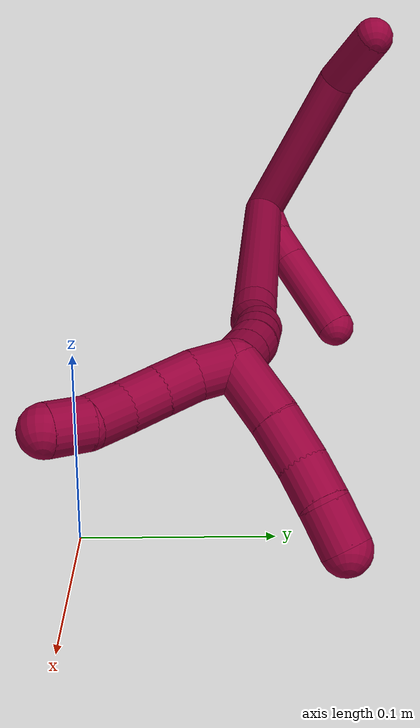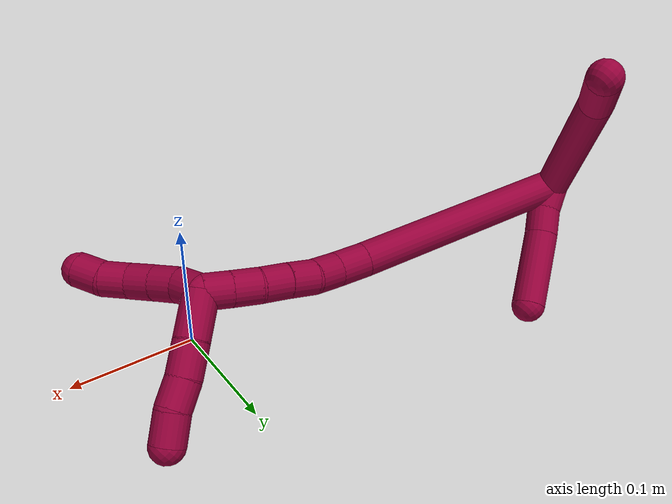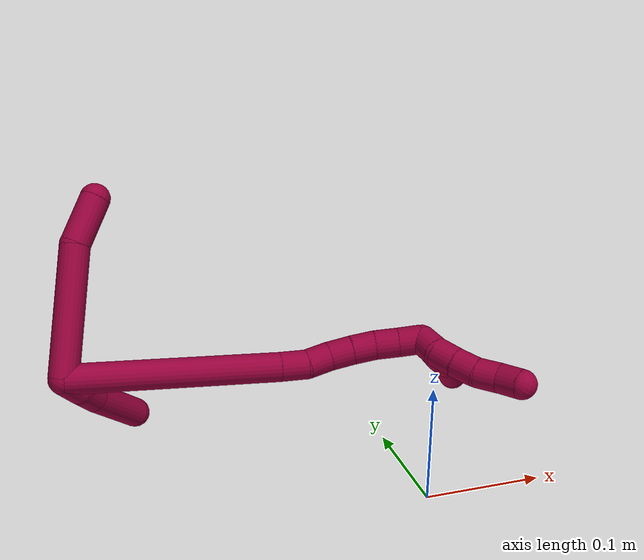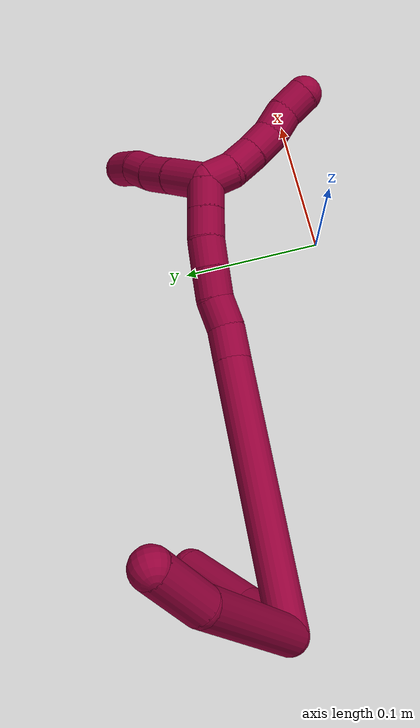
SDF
<sdf version="1.7">
 <world name="default">
  <model name="8">
   <static>0</static>
   <link name="8">
    <collision name="collision-cylinder-e_1_2_8">
     <pose>0.048302 0.01944 0.01428 -0.937246 1.10764 -0.606761</pose>
     <geometry><cylinder><radius>0.0125</radius><length>0.10798</length></cylinder></geometry>
     <surface>
      <friction><ode><mu>1.16</mu><mu2>1.16</mu2><slip1>0</slip1><slip2>0</slip2></ode></friction>
      <contact><ode><kp>1e+06</kp><kd>1</kd><max_vel>0</max_vel><min_depth>0.001</min_depth></ode></contact>
     </surface>
    </collision>
    <visual name="visual-cylinder-e_1_2_8">
     <pose>0.048302 0.01944 0.01428 -0.937246 1.10764 -0.606761</pose>
     <geometry><cylinder><radius>0.0125</radius><length>0.10798</length></cylinder></geometry>
     <material><ambient>0.584314 0 0.227451 1</ambient></material>
    </visual>
    <collision name="collision-cylinder-e_2_8_6">
     <pose>0.11595 0.046964 0.02722 -1.73506 1.17015 -1.32646</pose>
     <geometry><cylinder><radius>0.0125</radius><length>0.04202</length></cylinder></geometry>
     <surface>
      <friction><ode><mu>1.16</mu><mu2>1.16</mu2><slip1>0</slip1><slip2>0</slip2></ode></friction>
      <contact><ode><kp>1e+06</kp><kd>1</kd><max_vel>0</max_vel><min_depth>0.001</min_depth></ode></contact>
     </surface>
    </collision>
    <visual name="visual-cylinder-e_2_8_6">
     <pose>0.11595 0.046964 0.02722 -1.73506 1.17015 -1.32646</pose>
     <geometry><cylinder><radius>0.0125</radius><length>0.04202</length></cylinder></geometry>
     <material><ambient>0.584314 0 0.227451 1</ambient></material>
    </visual>
    <collision name="collision-cylinder-e_1_2_9">
     <pose>-0.002482 0.003475 -0.009711 -2.79793 -0.236159 1.19926</pose>
     <geometry><cylinder><radius>0.0125</radius><length>0.021217</length></cylinder></geometry>
     <surface>
      <friction><ode><mu>1.16</mu><mu2>1.16</mu2><slip1>0</slip1><slip2>0</slip2></ode></friction>
      <contact><ode><kp>1e+06</kp><kd>1</kd><max_vel>0</max_vel><min_depth>0.001</min_depth></ode></contact>
     </surface>
    </collision>
    <visual name="visual-cylinder-e_1_2_9">
     <pose>-0.002482 0.003475 -0.009711 -2.79793 -0.236159 1.19926</pose>
     <geometry><cylinder><radius>0.0125</radius><length>0.021217</length></cylinder></geometry>
     <material><ambient>0.584314 0 0.227451 1</ambient></material>
    </visual>
    <collision name="collision-cylinder-e_2_9_10">
     <pose>-0.007475 0.012197 -0.027935 -2.58926 -0.245999 0.822634</pose>
     <geometry><cylinder><radius>0.0125</radius><length>0.02062</length></cylinder></geometry>
     <surface>
      <friction><ode><mu>1.16</mu><mu2>1.16</mu2><slip1>0</slip1><slip2>0</slip2></ode></friction>
      <contact><ode><kp>1e+06</kp><kd>1</kd><max_vel>0</max_vel><min_depth>0.001</min_depth></ode></contact>
     </surface>
    </collision>
    <visual name="visual-cylinder-e_2_9_10">
     <pose>-0.007475 0.012197 -0.027935 -2.58926 -0.245999 0.822634</pose>
     <geometry><cylinder><radius>0.0125</radius><length>0.02062</length></cylinder></geometry>
     <material><ambient>0.584314 0 0.227451 1</ambient></material>
    </visual>
    <collision name="collision-cylinder-e_3_10_5">
     <pose>-0.014412 0.031485 -0.061527 -2.6312 -0.152796 0.570806</pose>
     <geometry><cylinder><radius>0.0125</radius><length>0.058163</length></cylinder></geometry>
     <surface>
      <friction><ode><mu>1.16</mu><mu2>1.16</mu2><slip1>0</slip1><slip2>0</slip2></ode></friction>
      <contact><ode><kp>1e+06</kp><kd>1</kd><max_vel>0</max_vel><min_depth>0.001</min_depth></ode></contact>
     </surface>
    </collision>
    <visual name="visual-cylinder-e_3_10_5">
     <pose>-0.014412 0.031485 -0.061527 -2.6312 -0.152796 0.570806</pose>
     <geometry><cylinder><radius>0.0125</radius><length>0.058163</length></cylinder></geometry>
     <material><ambient>0.584314 0 0.227451 1</ambient></material>
    </visual>
    <collision name="collision-cylinder-e_1_2_11">
     <pose>0.040762 -0.011992 -0.077001 2.98709 0.481932 2.53131</pose>
     <geometry><cylinder><radius>0.0125</radius><length>0.175892</length></cylinder></geometry>
     <surface>
      <friction><ode><mu>1.16</mu><mu2>1.16</mu2><slip1>0</slip1><slip2>0</slip2></ode></friction>
      <contact><ode><kp>1e+06</kp><kd>1</kd><max_vel>0</max_vel><min_depth>0.001</min_depth></ode></contact>
     </surface>
    </collision>
    <visual name="visual-cylinder-e_1_2_11">
     <pose>0.040762 -0.011992 -0.077001 2.98709 0.481932 2.53131</pose>
     <geometry><cylinder><radius>0.0125</radius><length>0.175892</length></cylinder></geometry>
     <material><ambient>0.584314 0 0.227451 1</ambient></material>
    </visual>
    <collision name="collision-cylinder-e_2_11_12">
     <pose>0.087326 -0.025652 -0.16394 2.97538 0.522382 2.5374</pose>
     <geometry><cylinder><radius>0.0125</radius><length>0.023258</length></cylinder></geometry>
     <surface>
      <friction><ode><mu>1.16</mu><mu2>1.16</mu2><slip1>0</slip1><slip2>0</slip2></ode></friction>
      <contact><ode><kp>1e+06</kp><kd>1</kd><max_vel>0</max_vel><min_depth>0.001</min_depth></ode></contact>
     </surface>
    </collision>
    <visual name="visual-cylinder-e_2_11_12">
     <pose>0.087326 -0.025652 -0.16394 2.97538 0.522382 2.5374</pose>
     <geometry><cylinder><radius>0.0125</radius><length>0.023258</length></cylinder></geometry>
     <material><ambient>0.584314 0 0.227451 1</ambient></material>
    </visual>
    <collision name="collision-cylinder-e_3_12_13">
     <pose>0.099887 -0.027061 -0.181581 -3.10816 0.71999 -3.05282</pose>
     <geometry><cylinder><radius>0.0125</radius><length>0.0205</length></cylinder></geometry>
     <surface>
      <friction><ode><mu>1.16</mu><mu2>1.16</mu2><slip1>0</slip1><slip2>0</slip2></ode></friction>
      <contact><ode><kp>1e+06</kp><kd>1</kd><max_vel>0</max_vel><min_depth>0.001</min_depth></ode></contact>
     </surface>
    </collision>
    <visual name="visual-cylinder-e_3_12_13">
     <pose>0.099887 -0.027061 -0.181581 -3.10816 0.71999 -3.05282</pose>
     <geometry><cylinder><radius>0.0125</radius><length>0.0205</length></cylinder></geometry>
     <material><ambient>0.584314 0 0.227451 1</ambient></material>
    </visual>
    <collision name="collision-cylinder-e_4_13_14">
     <pose>0.113349 -0.028653 -0.196698 2.89714 0.720031 2.51073</pose>
     <geometry><cylinder><radius>0.0125</radius><length>0.02033</length></cylinder></geometry>
     <surface>
      <friction><ode><mu>1.16</mu><mu2>1.16</mu2><slip1>0</slip1><slip2>0</slip2></ode></friction>
      <contact><ode><kp>1e+06</kp><kd>1</kd><max_vel>0</max_vel><min_depth>0.001</min_depth></ode></contact>
     </surface>
    </collision>
    <visual name="visual-cylinder-e_4_13_14">
     <pose>0.113349 -0.028653 -0.196698 2.89714 0.720031 2.51073</pose>
     <geometry><cylinder><radius>0.0125</radius><length>0.02033</length></cylinder></geometry>
     <material><ambient>0.584314 0 0.227451 1</ambient></material>
    </visual>
    <collision name="collision-cylinder-e_5_14_15">
     <pose>0.12628 -0.032436 -0.211698 2.89201 0.672054 2.45196</pose>
     <geometry><cylinder><radius>0.0125</radius><length>0.020007</length></cylinder></geometry>
     <surface>
      <friction><ode><mu>1.16</mu><mu2>1.16</mu2><slip1>0</slip1><slip2>0</slip2></ode></friction>
      <contact><ode><kp>1e+06</kp><kd>1</kd><max_vel>0</max_vel><min_depth>0.001</min_depth></ode></contact>
     </surface>
    </collision>
    <visual name="visual-cylinder-e_5_14_15">
     <pose>0.12628 -0.032436 -0.211698 2.89201 0.672054 2.45196</pose>
     <geometry><cylinder><radius>0.0125</radius><length>0.020007</length></cylinder></geometry>
     <material><ambient>0.584314 0 0.227451 1</ambient></material>
    </visual>
    <collision name="collision-cylinder-e_6_15_16">
     <pose>0.138141 -0.037615 -0.226889 2.73827 0.598042 1.97039</pose>
     <geometry><cylinder><radius>0.0125</radius><length>0.02001</length></cylinder></geometry>
     <surface>
      <friction><ode><mu>1.16</mu><mu2>1.16</mu2><slip1>0</slip1><slip2>0</slip2></ode></friction>
      <contact><ode><kp>1e+06</kp><kd>1</kd><max_vel>0</max_vel><min_depth>0.001</min_depth></ode></contact>
     </surface>
    </collision>
    <visual name="visual-cylinder-e_6_15_16">
     <pose>0.138141 -0.037615 -0.226889 2.73827 0.598042 1.97039</pose>
     <geometry><cylinder><radius>0.0125</radius><length>0.02001</length></cylinder></geometry>
     <material><ambient>0.584314 0 0.227451 1</ambient></material>
    </visual>
    <collision name="collision-cylinder-e_7_16_1">
     <pose>0.149571 -0.044093 -0.241975 2.73372 0.618255 1.99226</pose>
     <geometry><cylinder><radius>0.0125</radius><length>0.020004</length></cylinder></geometry>
     <surface>
      <friction><ode><mu>1.16</mu><mu2>1.16</mu2><slip1>0</slip1><slip2>0</slip2></ode></friction>
      <contact><ode><kp>1e+06</kp><kd>1</kd><max_vel>0</max_vel><min_depth>0.001</min_depth></ode></contact>
     </surface>
    </collision>
    <visual name="visual-cylinder-e_7_16_1">
     <pose>0.149571 -0.044093 -0.241975 2.73372 0.618255 1.99226</pose>
     <geometry><cylinder><radius>0.0125</radius><length>0.020004</length></cylinder></geometry>
     <material><ambient>0.584314 0 0.227451 1</ambient></material>
    </visual>
    <collision name="collision-cylinder-e_1_1_17">
     <pose>0.152465 -0.038254 -0.262869 -2.54683 -0.177435 0.564963</pose>
     <geometry><cylinder><radius>0.0125</radius><length>0.032901</length></cylinder></geometry>
     <surface>
      <friction><ode><mu>1.16</mu><mu2>1.16</mu2><slip1>0</slip1><slip2>0</slip2></ode></friction>
      <contact><ode><kp>1e+06</kp><kd>1</kd><max_vel>0</max_vel><min_depth>0.001</min_depth></ode></contact>
     </surface>
    </collision>
    <visual name="visual-cylinder-e_1_1_17">
     <pose>0.152465 -0.038254 -0.262869 -2.54683 -0.177435 0.564963</pose>
     <geometry><cylinder><radius>0.0125</radius><length>0.032901</length></cylinder></geometry>
     <material><ambient>0.584314 0 0.227451 1</ambient></material>
    </visual>
    <collision name="collision-cylinder-e_2_17_18">
     <pose>0.146674 -0.023076 -0.286385 -2.59814 -0.239894 0.816548</pose>
     <geometry><cylinder><radius>0.0125</radius><length>0.024308</length></cylinder></geometry>
     <surface>
      <friction><ode><mu>1.16</mu><mu2>1.16</mu2><slip1>0</slip1><slip2>0</slip2></ode></friction>
      <contact><ode><kp>1e+06</kp><kd>1</kd><max_vel>0</max_vel><min_depth>0.001</min_depth></ode></contact>
     </surface>
    </collision>
    <visual name="visual-cylinder-e_2_17_18">
     <pose>0.146674 -0.023076 -0.286385 -2.59814 -0.239894 0.816548</pose>
     <geometry><cylinder><radius>0.0125</radius><length>0.024308</length></cylinder></geometry>
     <material><ambient>0.584314 0 0.227451 1</ambient></material>
    </visual>
    <collision name="collision-cylinder-e_3_18_19">
     <pose>0.142142 -0.012674 -0.305734 -2.70642 -0.159934 0.69548</pose>
     <geometry><cylinder><radius>0.0125</radius><length>0.020651</length></cylinder></geometry>
     <surface>
      <friction><ode><mu>1.16</mu><mu2>1.16</mu2><slip1>0</slip1><slip2>0</slip2></ode></friction>
      <contact><ode><kp>1e+06</kp><kd>1</kd><max_vel>0</max_vel><min_depth>0.001</min_depth></ode></contact>
     </surface>
    </collision>
    <visual name="visual-cylinder-e_3_18_19">
     <pose>0.142142 -0.012674 -0.305734 -2.70642 -0.159934 0.69548</pose>
     <geometry><cylinder><radius>0.0125</radius><length>0.020651</length></cylinder></geometry>
     <material><ambient>0.584314 0 0.227451 1</ambient></material>
    </visual>
    <collision name="collision-cylinder-e_4_19_4">
     <pose>0.136314 -0.003483 -0.323983 -2.64385 -0.387499 1.31494</pose>
     <geometry><cylinder><radius>0.0125</radius><length>0.022141</length></cylinder></geometry>
     <surface>
      <friction><ode><mu>1.16</mu><mu2>1.16</mu2><slip1>0</slip1><slip2>0</slip2></ode></friction>
      <contact><ode><kp>1e+06</kp><kd>1</kd><max_vel>0</max_vel><min_depth>0.001</min_depth></ode></contact>
     </surface>
    </collision>
    <visual name="visual-cylinder-e_4_19_4">
     <pose>0.136314 -0.003483 -0.323983 -2.64385 -0.387499 1.31494</pose>
     <geometry><cylinder><radius>0.0125</radius><length>0.022141</length></cylinder></geometry>
     <material><ambient>0.584314 0 0.227451 1</ambient></material>
    </visual>
    <collision name="collision-cylinder-e_1_1_20">
     <pose>0.154324 -0.056856 -0.252301 1.86078 -0.104599 -0.140266</pose>
     <geometry><cylinder><radius>0.0125</radius><length>0.02</length></cylinder></geometry>
     <surface>
      <friction><ode><mu>1.16</mu><mu2>1.16</mu2><slip1>0</slip1><slip2>0</slip2></ode></friction>
      <contact><ode><kp>1e+06</kp><kd>1</kd><max_vel>0</max_vel><min_depth>0.001</min_depth></ode></contact>
     </surface>
    </collision>
    <visual name="visual-cylinder-e_1_1_20">
     <pose>0.154324 -0.056856 -0.252301 1.86078 -0.104599 -0.140266</pose>
     <geometry><cylinder><radius>0.0125</radius><length>0.02</length></cylinder></geometry>
     <material><ambient>0.584314 0 0.227451 1</ambient></material>
    </visual>
    <collision name="collision-cylinder-e_2_20_21">
     <pose>0.153579 -0.074913 -0.26036 2.11976 0.029863 0.053264</pose>
     <geometry><cylinder><radius>0.0125</radius><length>0.02</length></cylinder></geometry>
     <surface>
      <friction><ode><mu>1.16</mu><mu2>1.16</mu2><slip1>0</slip1><slip2>0</slip2></ode></friction>
      <contact><ode><kp>1e+06</kp><kd>1</kd><max_vel>0</max_vel><min_depth>0.001</min_depth></ode></contact>
     </surface>
    </collision>
    <visual name="visual-cylinder-e_2_20_21">
     <pose>0.153579 -0.074913 -0.26036 2.11976 0.029863 0.053264</pose>
     <geometry><cylinder><radius>0.0125</radius><length>0.02</length></cylinder></geometry>
     <material><ambient>0.584314 0 0.227451 1</ambient></material>
    </visual>
    <collision name="collision-cylinder-e_3_21_22">
     <pose>0.154696 -0.091758 -0.271067 2.15423 0.081939 0.15206</pose>
     <geometry><cylinder><radius>0.0125</radius><length>0.02</length></cylinder></geometry>
     <surface>
      <friction><ode><mu>1.16</mu><mu2>1.16</mu2><slip1>0</slip1><slip2>0</slip2></ode></friction>
      <contact><ode><kp>1e+06</kp><kd>1</kd><max_vel>0</max_vel><min_depth>0.001</min_depth></ode></contact>
     </surface>
    </collision>
    <visual name="visual-cylinder-e_3_21_22">
     <pose>0.154696 -0.091758 -0.271067 2.15423 0.081939 0.15206</pose>
     <geometry><cylinder><radius>0.0125</radius><length>0.02</length></cylinder></geometry>
     <material><ambient>0.584314 0 0.227451 1</ambient></material>
    </visual>
    <collision name="collision-cylinder-e_4_22_23">
     <pose>0.158327 -0.107546 -0.282581 2.24937 0.2851 0.583079</pose>
     <geometry><cylinder><radius>0.0125</radius><length>0.02</length></cylinder></geometry>
     <surface>
      <friction><ode><mu>1.16</mu><mu2>1.16</mu2><slip1>0</slip1><slip2>0</slip2></ode></friction>
      <contact><ode><kp>1e+06</kp><kd>1</kd><max_vel>0</max_vel><min_depth>0.001</min_depth></ode></contact>
     </surface>
    </collision>
    <visual name="visual-cylinder-e_4_22_23">
     <pose>0.158327 -0.107546 -0.282581 2.24937 0.2851 0.583079</pose>
     <geometry><cylinder><radius>0.0125</radius><length>0.02</length></cylinder></geometry>
     <material><ambient>0.584314 0 0.227451 1</ambient></material>
    </visual>
    <collision name="collision-cylinder-e_5_23_3">
     <pose>0.163561 -0.123984 -0.292309 1.96254 0.244525 0.363363</pose>
     <geometry><cylinder><radius>0.0125</radius><length>0.02</length></cylinder></geometry>
     <surface>
      <friction><ode><mu>1.16</mu><mu2>1.16</mu2><slip1>0</slip1><slip2>0</slip2></ode></friction>
      <contact><ode><kp>1e+06</kp><kd>1</kd><max_vel>0</max_vel><min_depth>0.001</min_depth></ode></contact>
     </surface>
    </collision>
    <visual name="visual-cylinder-e_5_23_3">
     <pose>0.163561 -0.123984 -0.292309 1.96254 0.244525 0.363363</pose>
     <geometry><cylinder><radius>0.0125</radius><length>0.02</length></cylinder></geometry>
     <material><ambient>0.584314 0 0.227451 1</ambient></material>
    </visual>
    <collision name="collision-sphere-3">
     <pose>0.165982 -0.132951 -0.296013 0 -0 0</pose>
     <geometry><sphere><radius>0.0125</radius></sphere></geometry>
     <surface>
      <friction><ode><mu>1.16</mu><mu2>1.16</mu2><slip1>0</slip1><slip2>0</slip2></ode></friction>
      <contact><ode><kp>1e+06</kp><kd>1</kd><max_vel>0</max_vel><min_depth>0.001</min_depth></ode></contact>
     </surface>
    </collision>
    <visual name="visual-sphere-3">
     <pose>0.165982 -0.132951 -0.296013 0 -0 0</pose>
     <geometry><sphere><radius>0.0125</radius></sphere></geometry>
     <material><ambient>0.584314 0 0.227451 1</ambient></material>
    </visual>
    <collision name="collision-sphere-23">
     <pose>0.16114 -0.115017 -0.288604 0 -0 0</pose>
     <geometry><sphere><radius>0.0125</radius></sphere></geometry>
     <surface>
      <friction><ode><mu>1.16</mu><mu2>1.16</mu2><slip1>0</slip1><slip2>0</slip2></ode></friction>
      <contact><ode><kp>1e+06</kp><kd>1</kd><max_vel>0</max_vel><min_depth>0.001</min_depth></ode></contact>
     </surface>
    </collision>
    <visual name="visual-sphere-23">
     <pose>0.16114 -0.115017 -0.288604 0 -0 0</pose>
     <geometry><sphere><radius>0.0125</radius></sphere></geometry>
     <material><ambient>0.584314 0 0.227451 1</ambient></material>
    </visual>
    <collision name="collision-sphere-22">
     <pose>0.155515 -0.100076 -0.276557 0 -0 0</pose>
     <geometry><sphere><radius>0.0125</radius></sphere></geometry>
     <surface>
      <friction><ode><mu>1.16</mu><mu2>1.16</mu2><slip1>0</slip1><slip2>0</slip2></ode></friction>
      <contact><ode><kp>1e+06</kp><kd>1</kd><max_vel>0</max_vel><min_depth>0.001</min_depth></ode></contact>
     </surface>
    </collision>
    <visual name="visual-sphere-22">
     <pose>0.155515 -0.100076 -0.276557 0 -0 0</pose>
     <geometry><sphere><radius>0.0125</radius></sphere></geometry>
     <material><ambient>0.584314 0 0.227451 1</ambient></material>
    </visual>
    <collision name="collision-sphere-21">
     <pose>0.153878 -0.08344 -0.265576 0 -0 0</pose>
     <geometry><sphere><radius>0.0125</radius></sphere></geometry>
     <surface>
      <friction><ode><mu>1.16</mu><mu2>1.16</mu2><slip1>0</slip1><slip2>0</slip2></ode></friction>
      <contact><ode><kp>1e+06</kp><kd>1</kd><max_vel>0</max_vel><min_depth>0.001</min_depth></ode></contact>
     </surface>
    </collision>
    <visual name="visual-sphere-21">
     <pose>0.153878 -0.08344 -0.265576 0 -0 0</pose>
     <geometry><sphere><radius>0.0125</radius></sphere></geometry>
     <material><ambient>0.584314 0 0.227451 1</ambient></material>
    </visual>
    <collision name="collision-sphere-20">
     <pose>0.15328 -0.066386 -0.255145 0 -0 0</pose>
     <geometry><sphere><radius>0.0125</radius></sphere></geometry>
     <surface>
      <friction><ode><mu>1.16</mu><mu2>1.16</mu2><slip1>0</slip1><slip2>0</slip2></ode></friction>
      <contact><ode><kp>1e+06</kp><kd>1</kd><max_vel>0</max_vel><min_depth>0.001</min_depth></ode></contact>
     </surface>
    </collision>
    <visual name="visual-sphere-20">
     <pose>0.15328 -0.066386 -0.255145 0 -0 0</pose>
     <geometry><sphere><radius>0.0125</radius></sphere></geometry>
     <material><ambient>0.584314 0 0.227451 1</ambient></material>
    </visual>
    <collision name="collision-sphere-4">
     <pose>0.132131 0.001411 -0.332989 0 -0 0</pose>
     <geometry><sphere><radius>0.0125</radius></sphere></geometry>
     <surface>
      <friction><ode><mu>1.16</mu><mu2>1.16</mu2><slip1>0</slip1><slip2>0</slip2></ode></friction>
      <contact><ode><kp>1e+06</kp><kd>1</kd><max_vel>0</max_vel><min_depth>0.001</min_depth></ode></contact>
     </surface>
    </collision>
    <visual name="visual-sphere-4">
     <pose>0.132131 0.001411 -0.332989 0 -0 0</pose>
     <geometry><sphere><radius>0.0125</radius></sphere></geometry>
     <material><ambient>0.584314 0 0.227451 1</ambient></material>
    </visual>
    <collision name="collision-sphere-5">
     <pose>-0.018838 0.045526 -0.086606 0 -0 0</pose>
     <geometry><sphere><radius>0.0125</radius></sphere></geometry>
     <surface>
      <friction><ode><mu>1.16</mu><mu2>1.16</mu2><slip1>0</slip1><slip2>0</slip2></ode></friction>
      <contact><ode><kp>1e+06</kp><kd>1</kd><max_vel>0</max_vel><min_depth>0.001</min_depth></ode></contact>
     </surface>
    </collision>
    <visual name="visual-sphere-5">
     <pose>-0.018838 0.045526 -0.086606 0 -0 0</pose>
     <geometry><sphere><radius>0.0125</radius></sphere></geometry>
     <material><ambient>0.584314 0 0.227451 1</ambient></material>
    </visual>
    <collision name="collision-sphere-10">
     <pose>-0.009986 0.017443 -0.036447 0 -0 0</pose>
     <geometry><sphere><radius>0.0125</radius></sphere></geometry>
     <surface>
      <friction><ode><mu>1.16</mu><mu2>1.16</mu2><slip1>0</slip1><slip2>0</slip2></ode></friction>
      <contact><ode><kp>1e+06</kp><kd>1</kd><max_vel>0</max_vel><min_depth>0.001</min_depth></ode></contact>
     </surface>
    </collision>
    <visual name="visual-sphere-10">
     <pose>-0.009986 0.017443 -0.036447 0 -0 0</pose>
     <geometry><sphere><radius>0.0125</radius></sphere></geometry>
     <material><ambient>0.584314 0 0.227451 1</ambient></material>
    </visual>
    <collision name="collision-sphere-6">
     <pose>0.135297 0.055048 0.02588 0 -0 0</pose>
     <geometry><sphere><radius>0.0125</radius></sphere></geometry>
     <surface>
      <friction><ode><mu>1.16</mu><mu2>1.16</mu2><slip1>0</slip1><slip2>0</slip2></ode></friction>
      <contact><ode><kp>1e+06</kp><kd>1</kd><max_vel>0</max_vel><min_depth>0.001</min_depth></ode></contact>
     </surface>
    </collision>
    <visual name="visual-sphere-6">
     <pose>0.135297 0.055048 0.02588 0 -0 0</pose>
     <geometry><sphere><radius>0.0125</radius></sphere></geometry>
     <material><ambient>0.584314 0 0.227451 1</ambient></material>
    </visual>
    <collision name="collision-sphere-9">
     <pose>-0.004964 0.00695 -0.019422 0 -0 0</pose>
     <geometry><sphere><radius>0.0125</radius></sphere></geometry>
     <surface>
      <friction><ode><mu>1.16</mu><mu2>1.16</mu2><slip1>0</slip1><slip2>0</slip2></ode></friction>
      <contact><ode><kp>1e+06</kp><kd>1</kd><max_vel>0</max_vel><min_depth>0.001</min_depth></ode></contact>
     </surface>
    </collision>
    <visual name="visual-sphere-9">
     <pose>-0.004964 0.00695 -0.019422 0 -0 0</pose>
     <geometry><sphere><radius>0.0125</radius></sphere></geometry>
     <material><ambient>0.584314 0 0.227451 1</ambient></material>
    </visual>
    <collision name="collision-sphere-2">
     <geometry><sphere><radius>0.0125</radius></sphere></geometry>
     <surface>
      <friction><ode><mu>1.16</mu><mu2>1.16</mu2><slip1>0</slip1><slip2>0</slip2></ode></friction>
      <contact><ode><kp>1e+06</kp><kd>1</kd><max_vel>0</max_vel><min_depth>0.001</min_depth></ode></contact>
     </surface>
    </collision>
    <visual name="visual-sphere-2">
     <geometry><sphere><radius>0.0125</radius></sphere></geometry>
     <material><ambient>0.584314 0 0.227451 1</ambient></material>
    </visual>
    <collision name="collision-sphere-19">
     <pose>0.140497 -0.008377 -0.314977 0 -0 0</pose>
     <geometry><sphere><radius>0.0125</radius></sphere></geometry>
     <surface>
      <friction><ode><mu>1.16</mu><mu2>1.16</mu2><slip1>0</slip1><slip2>0</slip2></ode></friction>
      <contact><ode><kp>1e+06</kp><kd>1</kd><max_vel>0</max_vel><min_depth>0.001</min_depth></ode></contact>
     </surface>
    </collision>
    <visual name="visual-sphere-19">
     <pose>0.140497 -0.008377 -0.314977 0 -0 0</pose>
     <geometry><sphere><radius>0.0125</radius></sphere></geometry>
     <material><ambient>0.584314 0 0.227451 1</ambient></material>
    </visual>
    <collision name="collision-sphere-8">
     <pose>0.096604 0.03888 0.02856 0 -0 0</pose>
     <geometry><sphere><radius>0.0125</radius></sphere></geometry>
     <surface>
      <friction><ode><mu>1.16</mu><mu2>1.16</mu2><slip1>0</slip1><slip2>0</slip2></ode></friction>
      <contact><ode><kp>1e+06</kp><kd>1</kd><max_vel>0</max_vel><min_depth>0.001</min_depth></ode></contact>
     </surface>
    </collision>
    <visual name="visual-sphere-8">
     <pose>0.096604 0.03888 0.02856 0 -0 0</pose>
     <geometry><sphere><radius>0.0125</radius></sphere></geometry>
     <material><ambient>0.584314 0 0.227451 1</ambient></material>
    </visual>
    <collision name="collision-sphere-11">
     <pose>0.081524 -0.023984 -0.154001 0 -0 0</pose>
     <geometry><sphere><radius>0.0125</radius></sphere></geometry>
     <surface>
      <friction><ode><mu>1.16</mu><mu2>1.16</mu2><slip1>0</slip1><slip2>0</slip2></ode></friction>
      <contact><ode><kp>1e+06</kp><kd>1</kd><max_vel>0</max_vel><min_depth>0.001</min_depth></ode></contact>
     </surface>
    </collision>
    <visual name="visual-sphere-11">
     <pose>0.081524 -0.023984 -0.154001 0 -0 0</pose>
     <geometry><sphere><radius>0.0125</radius></sphere></geometry>
     <material><ambient>0.584314 0 0.227451 1</ambient></material>
    </visual>
    <collision name="collision-sphere-12">
     <pose>0.093129 -0.027319 -0.173879 0 -0 0</pose>
     <geometry><sphere><radius>0.0125</radius></sphere></geometry>
     <surface>
      <friction><ode><mu>1.16</mu><mu2>1.16</mu2><slip1>0</slip1><slip2>0</slip2></ode></friction>
      <contact><ode><kp>1e+06</kp><kd>1</kd><max_vel>0</max_vel><min_depth>0.001</min_depth></ode></contact>
     </surface>
    </collision>
    <visual name="visual-sphere-12">
     <pose>0.093129 -0.027319 -0.173879 0 -0 0</pose>
     <geometry><sphere><radius>0.0125</radius></sphere></geometry>
     <material><ambient>0.584314 0 0.227451 1</ambient></material>
    </visual>
    <collision name="collision-sphere-13">
     <pose>0.106646 -0.026804 -0.189283 0 -0 0</pose>
     <geometry><sphere><radius>0.0125</radius></sphere></geometry>
     <surface>
      <friction><ode><mu>1.16</mu><mu2>1.16</mu2><slip1>0</slip1><slip2>0</slip2></ode></friction>
      <contact><ode><kp>1e+06</kp><kd>1</kd><max_vel>0</max_vel><min_depth>0.001</min_depth></ode></contact>
     </surface>
    </collision>
    <visual name="visual-sphere-13">
     <pose>0.106646 -0.026804 -0.189283 0 -0 0</pose>
     <geometry><sphere><radius>0.0125</radius></sphere></geometry>
     <material><ambient>0.584314 0 0.227451 1</ambient></material>
    </visual>
    <collision name="collision-sphere-14">
     <pose>0.120052 -0.030503 -0.204113 0 -0 0</pose>
     <geometry><sphere><radius>0.0125</radius></sphere></geometry>
     <surface>
      <friction><ode><mu>1.16</mu><mu2>1.16</mu2><slip1>0</slip1><slip2>0</slip2></ode></friction>
      <contact><ode><kp>1e+06</kp><kd>1</kd><max_vel>0</max_vel><min_depth>0.001</min_depth></ode></contact>
     </surface>
    </collision>
    <visual name="visual-sphere-14">
     <pose>0.120052 -0.030503 -0.204113 0 -0 0</pose>
     <geometry><sphere><radius>0.0125</radius></sphere></geometry>
     <material><ambient>0.584314 0 0.227451 1</ambient></material>
    </visual>
    <collision name="collision-sphere-15">
     <pose>0.132508 -0.03437 -0.219284 0 -0 0</pose>
     <geometry><sphere><radius>0.0125</radius></sphere></geometry>
     <surface>
      <friction><ode><mu>1.16</mu><mu2>1.16</mu2><slip1>0</slip1><slip2>0</slip2></ode></friction>
      <contact><ode><kp>1e+06</kp><kd>1</kd><max_vel>0</max_vel><min_depth>0.001</min_depth></ode></contact>
     </surface>
    </collision>
    <visual name="visual-sphere-15">
     <pose>0.132508 -0.03437 -0.219284 0 -0 0</pose>
     <geometry><sphere><radius>0.0125</radius></sphere></geometry>
     <material><ambient>0.584314 0 0.227451 1</ambient></material>
    </visual>
    <collision name="collision-sphere-16">
     <pose>0.143774 -0.04086 -0.234494 0 -0 0</pose>
     <geometry><sphere><radius>0.0125</radius></sphere></geometry>
     <surface>
      <friction><ode><mu>1.16</mu><mu2>1.16</mu2><slip1>0</slip1><slip2>0</slip2></ode></friction>
      <contact><ode><kp>1e+06</kp><kd>1</kd><max_vel>0</max_vel><min_depth>0.001</min_depth></ode></contact>
     </surface>
    </collision>
    <visual name="visual-sphere-16">
     <pose>0.143774 -0.04086 -0.234494 0 -0 0</pose>
     <geometry><sphere><radius>0.0125</radius></sphere></geometry>
     <material><ambient>0.584314 0 0.227451 1</ambient></material>
    </visual>
    <collision name="collision-sphere-1">
     <pose>0.155369 -0.047326 -0.249457 0 -0 0</pose>
     <geometry><sphere><radius>0.0125</radius></sphere></geometry>
     <surface>
      <friction><ode><mu>1.16</mu><mu2>1.16</mu2><slip1>0</slip1><slip2>0</slip2></ode></friction>
      <contact><ode><kp>1e+06</kp><kd>1</kd><max_vel>0</max_vel><min_depth>0.001</min_depth></ode></contact>
     </surface>
    </collision>
    <visual name="visual-sphere-1">
     <pose>0.155369 -0.047326 -0.249457 0 -0 0</pose>
     <geometry><sphere><radius>0.0125</radius></sphere></geometry>
     <material><ambient>0.584314 0 0.227451 1</ambient></material>
    </visual>
    <collision name="collision-sphere-18">
     <pose>0.143786 -0.016971 -0.29649 0 -0 0</pose>
     <geometry><sphere><radius>0.0125</radius></sphere></geometry>
     <surface>
      <friction><ode><mu>1.16</mu><mu2>1.16</mu2><slip1>0</slip1><slip2>0</slip2></ode></friction>
      <contact><ode><kp>1e+06</kp><kd>1</kd><max_vel>0</max_vel><min_depth>0.001</min_depth></ode></contact>
     </surface>
    </collision>
    <visual name="visual-sphere-18">
     <pose>0.143786 -0.016971 -0.29649 0 -0 0</pose>
     <geometry><sphere><radius>0.0125</radius></sphere></geometry>
     <material><ambient>0.584314 0 0.227451 1</ambient></material>
    </visual>
    <collision name="collision-sphere-17">
     <pose>0.149561 -0.029181 -0.27628 0 -0 0</pose>
     <geometry><sphere><radius>0.0125</radius></sphere></geometry>
     <surface>
      <friction><ode><mu>1.16</mu><mu2>1.16</mu2><slip1>0</slip1><slip2>0</slip2></ode></friction>
      <contact><ode><kp>1e+06</kp><kd>1</kd><max_vel>0</max_vel><min_depth>0.001</min_depth></ode></contact>
     </surface>
    </collision>
    <visual name="visual-sphere-17">
     <pose>0.149561 -0.029181 -0.27628 0 -0 0</pose>
     <geometry><sphere><radius>0.0125</radius></sphere></geometry>
     <material><ambient>0.584314 0 0.227451 1</ambient></material>
    </visual>
    <inertial>
     <pose>0.081471 -0.014876 -0.128851 0 -0 0</pose>
     <mass>0.75</mass>
     <inertia><ixx>-2e-05</ixx><ixy>0</ixy><ixz>0</ixz><iyy>0.00071</iyy><iyz>0</iyz><izz>-0.00034</izz></inertia>
    </inertial>
   </link>
   <pose>-0.27367 0.102195 0.100251 -0.131788 -1.01266 0.193082</pose>
  </model>
 </world>
</sdf>
